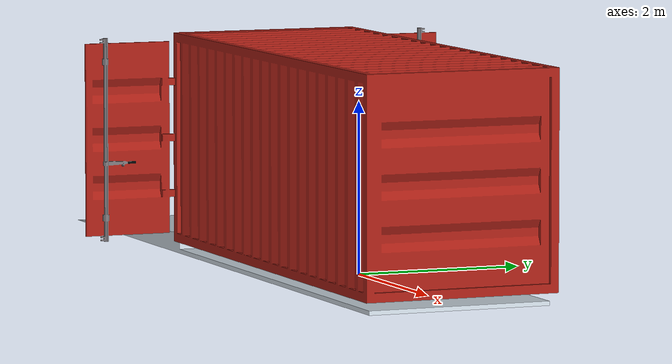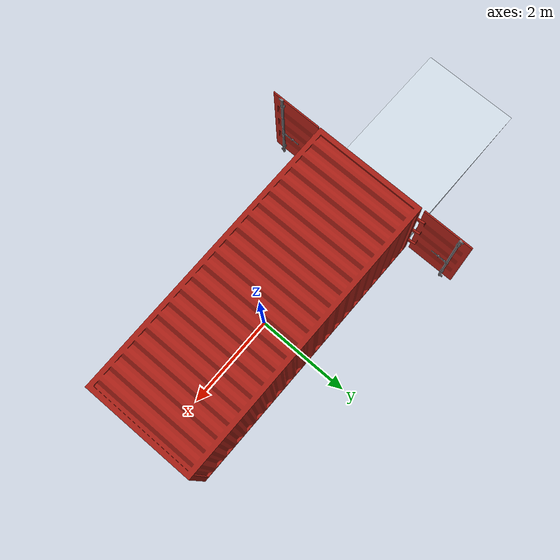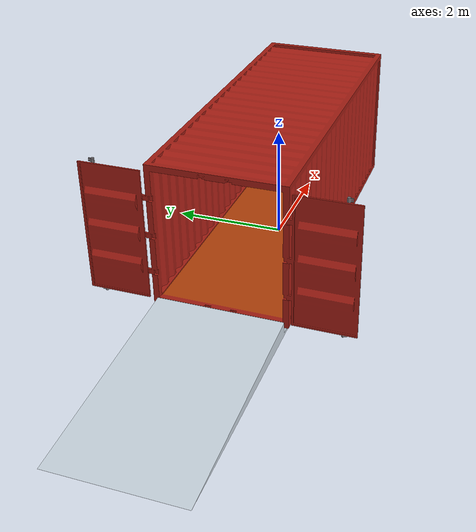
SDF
<?xml version="1.0" ?>
<sdf version="1.6">
  <model name="red_container">
    <link name="link">
    <pose>0 0.0 0.1 0 0 1.57</pose>
      <inertial>
        <pose>0 0.0 1.3 0 0 0</pose>
        <mass>200.0</mass>
        <inertia>
          <ixx>712.66</ixx>
          <iyy>200.8</iyy>
          <izz>688.16</izz>
          <ixy>0</ixy>
          <ixz>0</ixz>
          <iyz>0</iyz>
        </inertia>
      </inertial>
      <collision name="collision">
        <geometry>
          <mesh>
            <scale>1 1 1</scale>
            <uri>model://red_container/meshes/red_container.dae</uri>
          </mesh>
        </geometry>
      </collision>
      <visual name="visual">
        <geometry>
          <mesh>
            <scale>1 1 1</scale>
            <uri>model://red_container/meshes/red_container.dae</uri>
          </mesh>
        </geometry>
      </visual>

      <collision name="ramp_c">
        <pose>0.0 3.0 -0.15 0 0 -1.57</pose>
        <geometry>
          <mesh>
            <scale>1 1 1</scale>
            <uri>model://red_container/meshes/container_ramp.dae</uri>
          </mesh>
        </geometry>
      </collision>
      <visual name="ramp_v">
        <pose>0.0 3.0 -0.15 0 0 -1.57</pose>
        <geometry>
           <mesh>
            <scale>1 1 1</scale>
            <uri>model://red_container/meshes/container_ramp.dae</uri>
          </mesh>
        </geometry>

      </visual>
    </link>
  </model>
</sdf>
